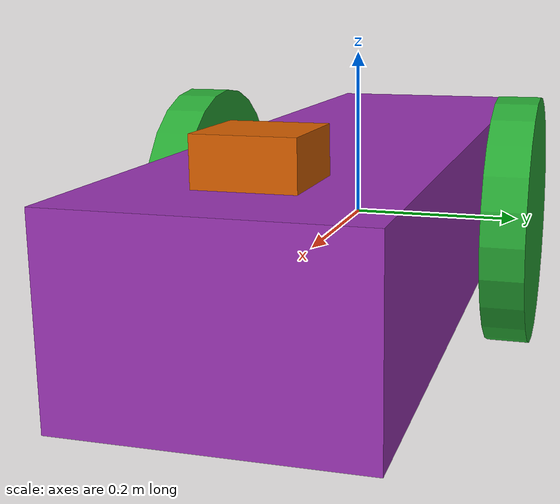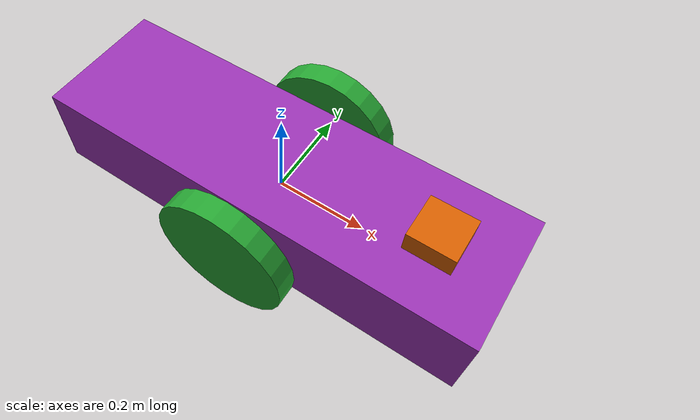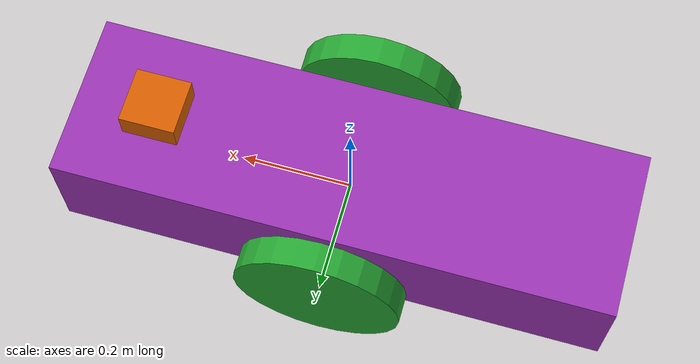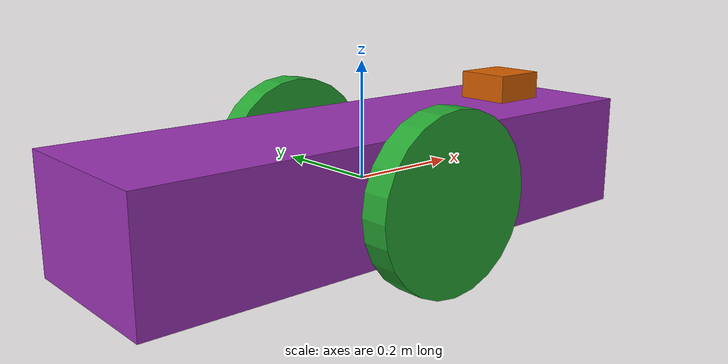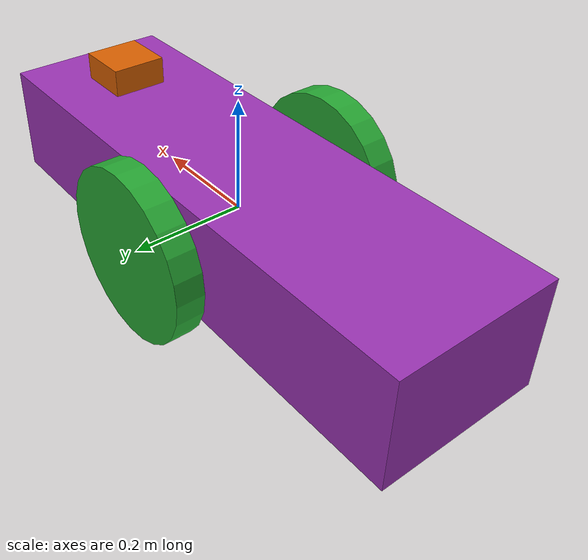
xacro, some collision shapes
<?xml version='1.0'?>

<robot name="my_robot" xmlns:xacro="http://www.ros.org/wiki/xacro">

  <xacro:include filename="$(find my_robot)/urdf/my_robot.gazebo" />
  <xacro:property name="box_x" value="1.0"/>
  <xacro:property name="box_y" value="0.3"/>
  <xacro:property name="box_z" value="0.2"/>
  <xacro:property name="ground_clearence" value="0.05"/>
  <xacro:property name="box_mass" value="15.0"/>
  <xacro:macro name="box_origin">
    <origin xyz="0 0 0" rpy="0 0 0"/>
  </xacro:macro>

  <xacro:macro name="box_viscol">
    <xacro:box_origin />
    <geometry>
      <box size="${box_x} ${box_y} ${box_z}"/>
    </geometry>
  </xacro:macro>

  <xacro:property name="I_dia" value ="0.1"/>
  <xacro:property name="I_off" value ="0"/>

  <xacro:property name="wheel_radius" value="${(box_z+2.0*ground_clearence)/2.0}"/>
  <xacro:property name="wheel_width" value="0.05"/>
  <xacro:property name="wheel_mass" value="5.0"/>
  <xacro:macro name="wheel_origin">
    <origin xyz="0 0 0" rpy="0 ${pi/2} ${pi/2}"/>
  </xacro:macro>

  <xacro:macro name="inertia_tensor">
    <inertia
	ixx="${I_dia}" ixy="${I_off}"   ixz="${I_off}"
	iyy="${I_dia}" iyz="${I_off}"
	izz="${I_dia}"
	/>
  </xacro:macro>
  <xacro:macro name="wheel_inertia">
    <xacro:wheel_origin />
    <mass value="${wheel_mass}"/>
    <xacro:inertia_tensor />
  </xacro:macro>

  <xacro:macro name="wheel_viscol">
    <xacro:wheel_origin />
    <geometry>
      <cylinder radius="${wheel_radius}" length="${wheel_width}"/>
    </geometry>
  </xacro:macro>

  <link name="robot_footprint"></link>

  <joint name="robot_footprint_joint" type="fixed">
    <xacro:box_origin />
    <parent link="robot_footprint"/>
    <child link="chassis" />
  </joint>

  <link name='chassis'>
    <pose>"0 0 ${box_z/2.0 + ground_clearence} 0 0 0"</pose>
    <inertial>
      <mass value="${box_mass}"/>
      <xacro:box_origin />
      <xacro:inertia_tensor />
    </inertial>

    <collision name='collision'>
      <xacro:box_viscol />
    </collision>

    <visual name='chassis_visual'>
      <xacro:box_viscol />
    </visual>

    <collision name='back_caster_collision'>
      <origin xyz="-${box_x/2.0-0.1-ground_clearence} 0 -${box_z/2.0}" rpy=" 0 0 0"/>
      <geometry>
	<sphere radius="${ground_clearence-0.0001}"/>
      </geometry>
    </collision>

    <visual name='back_caster_visual'>
      <origin xyz="-${box_x/2.0-0.1-ground_clearence} 0 -${box_z/2.0}" rpy=" 0 0 0"/>
      <geometry>
	<sphere radius="${ground_clearence}"/>
      </geometry>
    </visual>

    <collision name='front_caster_collision'>
      <origin xyz="${box_x/2.0-0.1-ground_clearence} 0 -${box_z/2.0}" rpy=" 0 0 0"/>
      <geometry>
	<sphere radius="${ground_clearence-0.0001}"/>
      </geometry>
    </collision>

    <visual name='front_caster_visual'>
      <origin xyz="${box_x/2.0-0.1-ground_clearence} 0 -${box_z/2.0}" rpy=" 0 0 0"/>
      <geometry>
	<sphere radius="${ground_clearence}"/>
      </geometry>
    </visual>

  </link>

  <gazebo reference="chassis">
    <material>Gazebo/Purple</material>
  </gazebo>

  <link name="left_wheel">
    <inertial>
      <xacro:wheel_origin />
      <xacro:wheel_inertia />
    </inertial>
    <visual>
      <xacro:wheel_viscol />
    </visual>
    <collision>
      <xacro:wheel_viscol />
    </collision>
  </link>

  <joint type="continuous" name="left_wheel_hinge">
    <origin xyz="0 ${box_y/2.0 + wheel_width} 0" rpy="0 0 0"/>
    <child link="left_wheel"/>
    <parent link="chassis"/>
    <axis xyz="0 1 0" rpy="0 0 0"/>
    <limit effort="10000" velocity="1000"/>
    <dynamics damping="1.0" friction="1.0"/>
  </joint>

  <gazebo reference="left_wheel">
    <material>Gazebo/Green</material>
  </gazebo>

  <link name="right_wheel">
    <inertial>
      <xacro:wheel_origin />
      <xacro:wheel_inertia />
    </inertial>
    <visual>
      <xacro:wheel_viscol />
    </visual>
    <collision>
      <xacro:wheel_viscol />
    </collision>
  </link>

  <joint type="continuous" name="right_wheel_hinge">
    <origin xyz="0 -${box_y/2.0 + wheel_width} 0" rpy="0 0 0"/>
    <child link="right_wheel"/>
    <parent link="chassis"/>
    <axis xyz="0 1 0" rpy="0 0 0"/>
    <limit effort="10000" velocity="1000"/>
    <dynamics damping="1.0" friction="1.0"/>
  </joint>

  <gazebo reference="right_wheel">
    <material>Gazebo/Green</material>
  </gazebo>

  <link name="camera">
    <inertial>
      <origin xyz="0 0 0" rpy="0 0 0"/>
      <mass value="0.1"/>
      <inertia
  	  ixx="1e-6" ixy="0" ixz="0"
  	  iyy="1e-6" iyz="0"
  	  izz="1e-6"
  	  />
    </inertial>

    <collision>
      <origin xyz="0 0 0" rpy="0 0 0"/>
      <geometry>
  	<box size="0.05 0.05 0.05"/>
      </geometry>
    </collision>

    <visual>
      <origin xyz="0 0 0" rpy="0 0 0"/>
      <geometry>
  	<box size="0.05 0.05 0.05"/>
      </geometry>
    </visual>
  </link>

  <joint type="fixed" name="camera_joint">
    <origin xyz="${box_x/2.0 - 0.1} 0 0" rpy="0 0 0"/>
    <child link="camera"/>
    <parent link="chassis"/>
    <axis xyz="0 1 0" rpy="0 0 0 "/>
  </joint>

  <link name="hokuyo">
    <inertial>
      <origin xyz="0 0 0" rpy="0 0 0"/>
      <mass value="1e-5"/>
      <inertia
  	  ixx="1e-6" ixy="0" ixz="0"
  	  iyy="1e-6" iyz="0"
  	  izz="1e-6"
  	  />
    </inertial>

    <collision>
      <origin xyz="0 0 0" rpy="0 0 0"/>
      <geometry>
  	<box size="0.1 0.1 0.1"/>
      </geometry>
    </collision>

    <visual>
      <origin xyz="0 0 0" rpy="0 0 0"/>
      <geometry>
	<mesh filename="package://my_robot/meshes/hokuyo.dae"/>
      </geometry>
    </visual>
  </link>

  <joint type="fixed" name="hokuyo_joint">
    <origin xyz="${box_x/2.0 -0.15} 0 ${box_z/2.0}" rpy="0 0 0"/>
    <child link="hokuyo"/>
    <parent link="chassis"/>
    <axis xyz="0 1 0" rpy="0 0 0 "/>
  </joint>

</robot>
